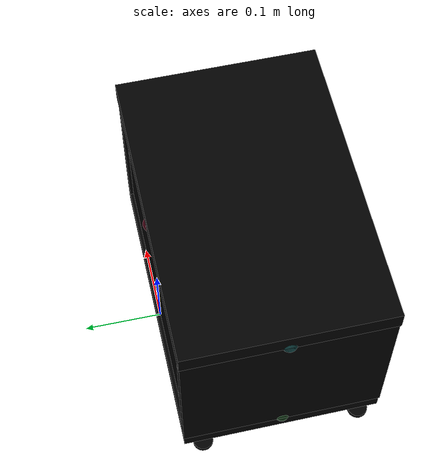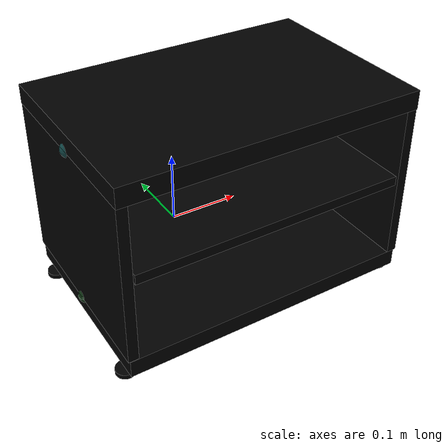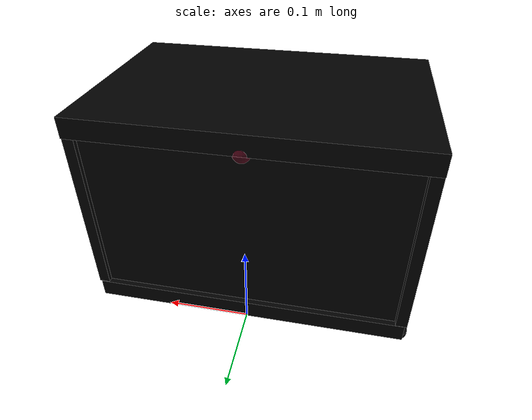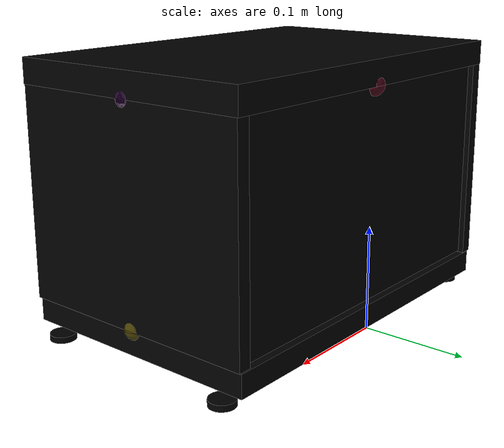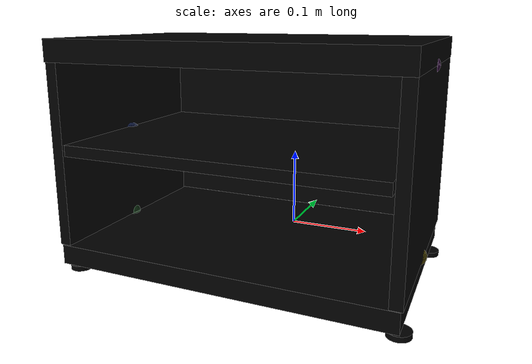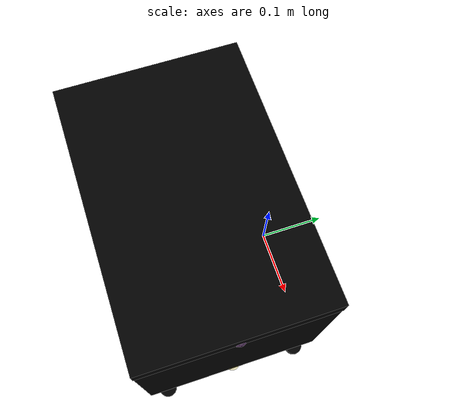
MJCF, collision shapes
<mujoco model="bookcase_besta_0172">
    <custom>
        <numeric data="-0.026918 0.356857 0.00147 -0.706121 -0.706121 -0.037332 -0.037332" name="0_part0_initpos"/>
        <numeric data="-0.040059 0.063892 0.01888 0.999678 -0.0 -0.0 -0.025373" name="5_part5_initpos"/>
        <numeric data="-0.01648 -0.256981 0.00622 0.999997 -0.0 -0.0 -0.002593" name="4_part4_initpos"/>
        <numeric data="0.342087 0.383471 0.00603 0.5 0.5 0.5 -0.5" name="3_part3_initpos"/>
        <numeric data="0.347707 0.027033 0.011743 1.3e-05 -0.707105 0.707109 1.3e-05" name="2_part2_initpos"/>
        <numeric data="-0.420346 0.066419 0.006133 0.706873 0.018162 -0.706874 0.018162" name="1_part1_initpos"/>
    </custom>
    <asset>
        <mesh file="bookcase_besta_0172/0.stl" name="part0" scale="0.001 0.001 0.001"/>
        <mesh file="bookcase_besta_0172/5.stl" name="part5" scale="0.001 0.001 0.001"/>
        <mesh file="bookcase_besta_0172/4.stl" name="part4" scale="0.001 0.001 0.001"/>
        <mesh file="bookcase_besta_0172/3.stl" name="part3" scale="0.001 0.001 0.001"/>
        <mesh file="bookcase_besta_0172/2.stl" name="part2" scale="0.001 0.001 0.001"/>
        <mesh file="bookcase_besta_0172/1.stl" name="part1" scale="0.001 0.001 0.001"/>
    </asset>
    <equality>
        <weld active="false" body1="0_part0" body2="2_part2" solimp="1 1 0.5" solref="0.01 0.3"/>
        <weld active="false" body1="5_part5" body2="1_part1" solimp="1 1 0.5" solref="0.01 0.3"/>
        <weld active="false" body1="5_part5" body2="3_part3" solimp="1 1 0.5" solref="0.01 0.3"/>
        <weld active="false" body1="4_part4" body2="1_part1" solimp="1 1 0.5" solref="0.01 0.3"/>
        <weld active="false" body1="4_part4" body2="3_part3" solimp="1 1 0.5" solref="0.01 0.3"/>
        <weld active="false" body1="3_part3" body2="2_part2" solimp="1 1 0.5" solref="0.01 0.3"/>
        <weld active="false" body1="2_part2" body2="1_part1" solimp="1 1 0.5" solref="0.01 0.3"/>
        <weld active="false" body1="0_part0" body2="2_part2" solimp="1 1 0.5" solref="0.01 0.3"/>
        <weld active="false" body1="4_part4" body2="3_part3" solimp="1 1 0.5" solref="0.01 0.3"/>
        <weld active="false" body1="5_part5" body2="3_part3" solimp="1 1 0.5" solref="0.01 0.3"/>
        <weld active="false" body1="2_part2" body2="1_part1" solimp="1 1 0.5" solref="0.01 0.3"/>
        <weld active="false" body1="3_part3" body2="2_part2" solimp="1 1 0.5" solref="0.01 0.3"/>
        <weld active="false" body1="4_part4" body2="1_part1" solimp="1 1 0.5" solref="0.01 0.3"/>
        <weld active="false" body1="5_part5" body2="1_part1" solimp="1 1 0.5" solref="0.01 0.3"/>
    </equality>
    <worldbody>
        <body name="0_part0" pos="5e-10 0.0 0.1300000004" quat="1 0 0 0">
            <geom conaffinity="0" contype="0" density="0" mesh="part0" name="0_part0_mesh" pos="0.0 0.0 0.0"
                  rgba="0.82 0.71 0.55 1" type="mesh"/>
            <site name="0_part0_horizontal_radius_site" pos="5e-10 0.0 4e-10" quat="1 0 0 0" rgba="0 0 0 0"
                  size="0.02"/>
            <site name="0_part0_top_site" pos="5e-10 0.0 0.1079500004" quat="1 0 0 0" rgba="0 0 0 0" size="0.02"/>
            <site name="0_part0_bottom_site" pos="5e-10 0.0 -0.1079499996" quat="1 0 0 0" rgba="0 0 0 0" size="0.02"/>
            <site name="0_part0_corner_site8" pos="-0.18414999950000002 0.0015875244 0.1079500004" quat="1 0 0 0"
                  rgba="0 0 0 0" size="0.02"/>
            <site name="0_part0_corner_site7" pos="0.18415000050000002 0.0015875244 0.1079500004" quat="1 0 0 0"
                  rgba="0 0 0 0" size="0.02"/>
            <site name="0_part0_corner_site6" pos="0.18415000050000002 -0.0015875244 0.1079500004" quat="1 0 0 0"
                  rgba="0 0 0 0" size="0.02"/>
            <site name="0_part0_corner_site5" pos="-0.18414999950000002 -0.0015875244 0.1079500004" quat="1 0 0 0"
                  rgba="0 0 0 0" size="0.02"/>
            <site name="0_part0_corner_site4" pos="-0.18414999950000002 0.0015875244 -0.1079499996" quat="1 0 0 0"
                  rgba="0 0 0 0" size="0.02"/>
            <site name="0_part0_corner_site3" pos="0.18415000050000002 0.0015875244 -0.1079499996" quat="1 0 0 0"
                  rgba="0 0 0 0" size="0.02"/>
            <site name="0_part0_corner_site2" pos="0.18415000050000002 -0.0015875244 -0.1079499996" quat="1 0 0 0"
                  rgba="0 0 0 0" size="0.02"/>
            <site name="0_part0_corner_site1" pos="-0.18414999950000002 -0.0015875244 -0.1079499996" quat="1 0 0 0"
                  rgba="0 0 0 0" size="0.02"/>
            <site name="back-top,0,180,conn_site1" pos="0.0 0.0003 0.1018" quat="1 0 0 0"
                  rgba="0.9019 0.0980 0.2941 0.3" size="0.01"/>
            <geom density="50" name="noviz_collision_0_part0_0" pos="0.0 0.0 0.0" quat="1 0 0 0" rgba="0 0 0 0"
                  size="0.1765 0.0015 0.1" solref="0.001 1" type="box"/>
        </body>
        <body name="5_part5" pos="1e-09 -0.1190625 0.00998500000000001" quat="1 0 0 0">
            <geom conaffinity="0" contype="0" density="0" mesh="part5" name="5_part5_mesh" pos="0.0 0.0 0.0"
                  rgba="0.82 0.71 0.55 1" type="mesh"/>
            <site name="5_part5_horizontal_radius_site" pos="0.0 0.0 0.0" quat="1 0 0 0" rgba="0 0 0 0" size="0.02"/>
            <site name="5_part5_top_site" pos="0.0 0.0 0.018415" quat="1 0 0 0" rgba="0 0 0 0" size="0.02"/>
            <site name="5_part5_bottom_site" pos="0.0 0.0 -0.018415" quat="1 0 0 0" rgba="0 0 0 0" size="0.02"/>
            <site name="5_part5_corner_site8" pos="-0.1968499985 0.127 0.018415" quat="1 0 0 0" rgba="0 0 0 0"
                  size="0.02"/>
            <site name="5_part5_corner_site7" pos="0.1968499985 0.127 0.018415" quat="1 0 0 0" rgba="0 0 0 0"
                  size="0.02"/>
            <site name="5_part5_corner_site6" pos="0.1968499985 -0.127 0.018415" quat="1 0 0 0" rgba="0 0 0 0"
                  size="0.02"/>
            <site name="5_part5_corner_site5" pos="-0.1968499985 -0.127 0.018415" quat="1 0 0 0" rgba="0 0 0 0"
                  size="0.02"/>
            <site name="5_part5_corner_site4" pos="-0.1968499985 0.127 -0.018415" quat="1 0 0 0" rgba="0 0 0 0"
                  size="0.02"/>
            <site name="5_part5_corner_site3" pos="0.1968499985 0.127 -0.018415" quat="1 0 0 0" rgba="0 0 0 0"
                  size="0.02"/>
            <site name="5_part5_corner_site2" pos="0.1968499985 -0.127 -0.018415" quat="1 0 0 0" rgba="0 0 0 0"
                  size="0.02"/>
            <site name="5_part5_corner_site1" pos="-0.1968499985 -0.127 -0.018415" quat="1 0 0 0" rgba="0 0 0 0"
                  size="0.02"/>
            <site name="bottom-left,0,conn_site1" pos="-0.1838 0.0 0.01901" quat="1 0 0 0"
                  rgba="0.2352 0.7058 0.2941 0.3" size="0.01"/>
            <site name="bottom-right,0,conn_site1" pos="0.1838 0.0 0.01901" quat="1 0 0 0" rgba="1.0 0.8823 0.0980 0.3"
                  size="0.01"/>
            <geom density="50" name="noviz_collision_5_part5_0" pos="0.0 6e-05 0.00632" quat="1 0 0 0" rgba="0 0 0 0"
                  size="0.188 0.125 0.011" solref="0.001 1" type="box"/>
            <geom density="50" name="noviz_collision_5_part5_1" pos="-0.184 -0.10124 -0.01589" quat="1 0 0 0"
                  rgba="0 0 0 0" size="0.0125 0.003" solref="0.001 1" type="cylinder"/>
            <geom density="50" name="noviz_collision_5_part5_2" pos="0.184 -0.10124 -0.01589" quat="1 0 0 0"
                  rgba="0 0 0 0" size="0.0125 0.003" solref="0.001 1" type="cylinder"/>
            <geom density="50" name="noviz_collision_5_part5_3" pos="-0.184 0.10066 -0.01589" quat="1 0 0 0"
                  rgba="0 0 0 0" size="0.0125 0.003" solref="0.001 1" type="cylinder"/>
            <geom density="50" name="noviz_collision_5_part5_4" pos="0.184 0.10066 -0.01589" quat="1 0 0 0"
                  rgba="0 0 0 0" size="0.0125 0.003" solref="0.001 1" type="cylinder"/>
        </body>
        <body name="4_part4" pos="5e-10 -0.1238249943 0.1375675245" quat="1 0 0 0">
            <geom conaffinity="0" contype="0" density="0" mesh="part4" name="4_part4_mesh" pos="0.0 0.0 0.0"
                  rgba="0.82 0.71 0.55 1" type="mesh"/>
            <site name="4_part4_horizontal_radius_site" pos="0.0 0.0 0.0" quat="1 0 0 0" rgba="0 0 0 0" size="0.02"/>
            <site name="4_part4_top_site" pos="0.0 0.0 0.00635" quat="1 0 0 0" rgba="0 0 0 0" size="0.02"/>
            <site name="4_part4_bottom_site" pos="0.0 0.0 -0.00635" quat="1 0 0 0" rgba="0 0 0 0" size="0.02"/>
            <site name="4_part4_corner_site8" pos="-0.1778 0.1222375 0.00635" quat="1 0 0 0" rgba="0 0 0 0"
                  size="0.02"/>
            <site name="4_part4_corner_site7" pos="0.1778 0.1222375 0.00635" quat="1 0 0 0" rgba="0 0 0 0" size="0.02"/>
            <site name="4_part4_corner_site6" pos="0.1778 -0.1222375 0.00635" quat="1 0 0 0" rgba="0 0 0 0"
                  size="0.02"/>
            <site name="4_part4_corner_site5" pos="-0.1778 -0.1222375 0.00635" quat="1 0 0 0" rgba="0 0 0 0"
                  size="0.02"/>
            <site name="4_part4_corner_site4" pos="-0.1778 0.1222375 -0.00635" quat="1 0 0 0" rgba="0 0 0 0"
                  size="0.02"/>
            <site name="4_part4_corner_site3" pos="0.1778 0.1222375 -0.00635" quat="1 0 0 0" rgba="0 0 0 0"
                  size="0.02"/>
            <site name="4_part4_corner_site2" pos="0.1778 -0.1222375 -0.00635" quat="1 0 0 0" rgba="0 0 0 0"
                  size="0.02"/>
            <site name="4_part4_corner_site1" pos="-0.1778 -0.1222375 -0.00635" quat="1 0 0 0" rgba="0 0 0 0"
                  size="0.02"/>
            <site name="center-left,0,180,conn_site1" pos="-0.1764 0.00238 0.00023" quat="0.7071067 0 0.7071068 0"
                  rgba="0.2627 0.3882 0.8470 0.3" size="0.01"/>
            <site name="center-right,0,180,conn_site1" pos="0.1779 0.00238 0.00023" quat="0.7071067 0 -0.7071068 0"
                  rgba="0.9607 0.5098 0.1921 0.3" size="0.01"/>
            <geom density="50" name="noviz_collision_4_part4_0" pos="0.0 2e-05 0.0" quat="1 0 0 0" rgba="0 0 0 0"
                  size="0.175 0.12 0.00625" solref="0.001 1" type="box"/>
        </body>
        <body name="3_part3" pos="0.1841499907 -0.1190624957 0.13000000320000002" quat="1 0 0 0">
            <geom conaffinity="0" contype="0" density="0" mesh="part3" name="3_part3_mesh" pos="0.0 0.0 0.0"
                  rgba="0.82 0.71 0.55 1" type="mesh"/>
            <site name="3_part3_horizontal_radius_site" pos="-1e-10 1.4e-09 0.0" quat="1 0 0 0" rgba="0 0 0 0"
                  size="0.02"/>
            <site name="3_part3_top_site" pos="-1e-10 1.4e-09 0.1016000061" quat="1 0 0 0" rgba="0 0 0 0" size="0.02"/>
            <site name="3_part3_bottom_site" pos="-1e-10 1.4e-09 -0.1016000061" quat="1 0 0 0" rgba="0 0 0 0"
                  size="0.02"/>
            <site name="3_part3_corner_site8" pos="-0.0063500099 0.1270000029 0.1016000061" quat="1 0 0 0"
                  rgba="0 0 0 0" size="0.02"/>
            <site name="3_part3_corner_site7" pos="0.0063500097 0.1270000029 0.1016000061" quat="1 0 0 0" rgba="0 0 0 0"
                  size="0.02"/>
            <site name="3_part3_corner_site6" pos="0.0063500097 -0.127 0.1016000061" quat="1 0 0 0" rgba="0 0 0 0"
                  size="0.02"/>
            <site name="3_part3_corner_site5" pos="-0.0063500099 -0.127 0.1016000061" quat="1 0 0 0" rgba="0 0 0 0"
                  size="0.02"/>
            <site name="3_part3_corner_site4" pos="-0.0063500099 0.1270000029 -0.1016000061" quat="1 0 0 0"
                  rgba="0 0 0 0" size="0.02"/>
            <site name="3_part3_corner_site3" pos="0.0063500097 0.1270000029 -0.1016000061" quat="1 0 0 0"
                  rgba="0 0 0 0" size="0.02"/>
            <site name="3_part3_corner_site2" pos="0.0063500097 -0.127 -0.1016000061" quat="1 0 0 0" rgba="0 0 0 0"
                  size="0.02"/>
            <site name="3_part3_corner_site1" pos="-0.0063500099 -0.127 -0.1016000061" quat="1 0 0 0" rgba="0 0 0 0"
                  size="0.02"/>
            <site name="right-top,0,conn_site1" pos="-0.00115 0.0 0.1016" quat="1 0 0 0" rgba="0.5686 0.1176 0.7058 0.3"
                  size="0.01"/>
            <site name="right-bottom,0,conn_site1" pos="-0.00035 0.0 -0.101" quat="1 0 0 0" rgba="1.0 0.8823 0.0980 0.3"
                  size="0.01"/>
            <site name="right-center,0,180,conn_site1" pos="-0.00625 -0.00238 0.0078" quat="0.7071067 0 -0.7071068 0"
                  rgba="0.9607 0.5098 0.1921 0.3" size="0.01"/>
            <geom density="50" name="noviz_collision_3_part3_0" pos="-0.00044 -0.00054 0.0" quat="1 0 0 0"
                  rgba="0 0 0 0" size="0.0065 0.1255 0.1016" solref="0.001 1" type="box"/>
        </body>
        <body name="2_part2" pos="5e-10 -0.1190624945 0.24430000040000002" quat="1 0 0 0">
            <geom conaffinity="0" contype="0" density="0" mesh="part2" name="2_part2_mesh" pos="0.0 0.0 0.0"
                  rgba="0.82 0.71 0.55 1" type="mesh"/>
            <site name="2_part2_horizontal_radius_site" pos="0.0 1.8e-09 -0.0" quat="1 0 0 0" rgba="0 0 0 0"
                  size="0.02"/>
            <site name="2_part2_top_site" pos="0.0 1.8e-09 0.0127" quat="1 0 0 0" rgba="0 0 0 0" size="0.02"/>
            <site name="2_part2_bottom_site" pos="0.0 1.8e-09 -0.0127" quat="1 0 0 0" rgba="0 0 0 0" size="0.02"/>
            <site name="2_part2_corner_site8" pos="-0.1905 0.1270000037 0.0127" quat="1 0 0 0" rgba="0 0 0 0"
                  size="0.02"/>
            <site name="2_part2_corner_site7" pos="0.1905 0.1270000037 0.0127" quat="1 0 0 0" rgba="0 0 0 0"
                  size="0.02"/>
            <site name="2_part2_corner_site6" pos="0.1905 -0.127 0.0127" quat="1 0 0 0" rgba="0 0 0 0" size="0.02"/>
            <site name="2_part2_corner_site5" pos="-0.1905 -0.127 0.0127" quat="1 0 0 0" rgba="0 0 0 0" size="0.02"/>
            <site name="2_part2_corner_site4" pos="-0.1905 0.1270000037 -0.0127" quat="1 0 0 0" rgba="0 0 0 0"
                  size="0.02"/>
            <site name="2_part2_corner_site3" pos="0.1905 0.1270000037 -0.0127" quat="1 0 0 0" rgba="0 0 0 0"
                  size="0.02"/>
            <site name="2_part2_corner_site2" pos="0.1905 -0.127 -0.0127" quat="1 0 0 0" rgba="0 0 0 0" size="0.02"/>
            <site name="2_part2_corner_site1" pos="-0.1905 -0.127 -0.0127" quat="1 0 0 0" rgba="0 0 0 0" size="0.02"/>
            <site name="top-left,0,conn_site1" pos="-0.1845 0.0 -0.0127" quat="1 0 0 0" rgba="0.2745 0.9411 0.9411 0.3"
                  size="0.01"/>
            <site name="top-right,0,conn_site1" pos="0.183 0.0 -0.0127" quat="1 0 0 0" rgba="0.5686 0.1176 0.7058 0.3"
                  size="0.01"/>
            <site name="top-back,0,180,conn_site1" pos="0.0 0.11936 -0.0125" quat="1 0 0 0"
                  rgba="0.9019 0.0980 0.2941 0.3" size="0.01"/>
            <geom density="50" name="noviz_collision_2_part2_0" pos="0.0 -0.00034 -0.00052" quat="1 0 0 0"
                  rgba="0 0 0 0" size="0.1905 0.1265 0.01218" solref="0.001 1" type="box"/>
        </body>
        <body name="1_part1" pos="-0.18414999950000002 -0.1190624957 0.13000000320000002" quat="1 0 0 0">
            <geom conaffinity="0" contype="0" density="0" mesh="part1" name="1_part1_mesh" pos="0.0 0.0 0.0"
                  rgba="0.82 0.71 0.55 1" type="mesh"/>
            <site name="1_part1_horizontal_radius_site" pos="0.0 1.4e-09 0.0" quat="1 0 0 0" rgba="0 0 0 0"
                  size="0.02"/>
            <site name="1_part1_top_site" pos="0.0 1.4e-09 0.1016000061" quat="1 0 0 0" rgba="0 0 0 0" size="0.02"/>
            <site name="1_part1_bottom_site" pos="0.0 1.4e-09 -0.1016000061" quat="1 0 0 0" rgba="0 0 0 0" size="0.02"/>
            <site name="1_part1_corner_site8" pos="-0.00635 0.1270000029 0.1016000061" quat="1 0 0 0" rgba="0 0 0 0"
                  size="0.02"/>
            <site name="1_part1_corner_site7" pos="0.00635 0.1270000029 0.1016000061" quat="1 0 0 0" rgba="0 0 0 0"
                  size="0.02"/>
            <site name="1_part1_corner_site6" pos="0.00635 -0.127 0.1016000061" quat="1 0 0 0" rgba="0 0 0 0"
                  size="0.02"/>
            <site name="1_part1_corner_site5" pos="-0.00635 -0.127 0.1016000061" quat="1 0 0 0" rgba="0 0 0 0"
                  size="0.02"/>
            <site name="1_part1_corner_site4" pos="-0.00635 0.1270000029 -0.1016000061" quat="1 0 0 0" rgba="0 0 0 0"
                  size="0.02"/>
            <site name="1_part1_corner_site3" pos="0.00635 0.1270000029 -0.1016000061" quat="1 0 0 0" rgba="0 0 0 0"
                  size="0.02"/>
            <site name="1_part1_corner_site2" pos="0.00635 -0.127 -0.1016000061" quat="1 0 0 0" rgba="0 0 0 0"
                  size="0.02"/>
            <site name="1_part1_corner_site1" pos="-0.00635 -0.127 -0.1016000061" quat="1 0 0 0" rgba="0 0 0 0"
                  size="0.02"/>
            <site name="left-top,0,conn_site1" pos="-0.00035 0.0 0.1016" quat="1 0 0 0" rgba="0.2745 0.9411 0.9411 0.3"
                  size="0.01"/>
            <site name="left-bottom,0,conn_site1" pos="0.00035 0.0 -0.101" quat="1 0 0 0"
                  rgba="0.2352 0.7058 0.2941 0.3" size="0.01"/>
            <site name="left-center,0,180,conn_site1" pos="0.00775 -0.00238 0.0078" quat="0.7071067 0 0.7071068 0"
                  rgba="0.2627 0.3882 0.8470 0.3" size="0.01"/>
            <geom density="50" name="noviz_collision_1_part1_0" pos="0.00044 0.00026 0.0" quat="1 0 0 0" rgba="0 0 0 0"
                  size="0.0065 0.1255 0.1016" solref="0.001 1" type="box"/>
        </body>
    </worldbody>
    <actuator/>
    <sensor/>
    <contact/>
    <default/>
</mujoco>
